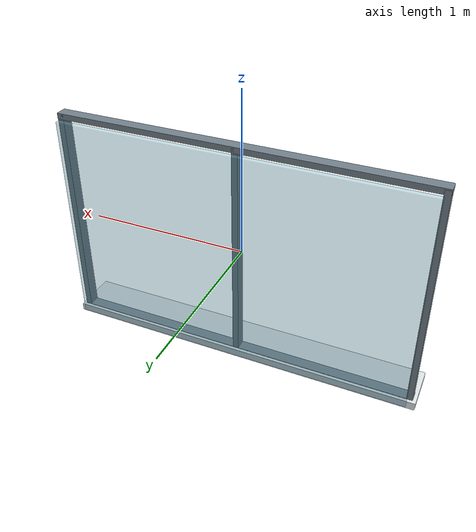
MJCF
<?xml version='1.0' encoding='utf-8'?>
<mujoco model="Observation window | static procedural reference">
  <visual>
    <global offwidth="1000" offheight="600" />
  </visual>
  <asset>
    <texture type="skybox" builtin="gradient" rgb1=".92 .95 .97" rgb2=".70 .78 .84" width="512" height="3072" />
  </asset>
  <worldbody>
    <geom type="box" size="1.09 0.015 0.68" pos="0 0.145 0.0085" quat="1 0 0 0" rgba="0.400000006 0.670000017 0.75999999 0.379999995" contype="0" conaffinity="0" />
    <geom type="box" size="0.018 0.035 0.7" pos="-1.1 0.065 0.0085" quat="1 0 0 0" rgba="0.449999988 0.50999999 0.550000012 1" contype="0" conaffinity="0" />
    <geom type="box" size="0.018 0.035 0.7" pos="0 0.065 0.0085" quat="1 0 0 0" rgba="0.449999988 0.50999999 0.550000012 1" contype="0" conaffinity="0" />
    <geom type="box" size="0.018 0.035 0.7" pos="1.1 0.065 0.0085" quat="1 0 0 0" rgba="0.449999988 0.50999999 0.550000012 1" contype="0" conaffinity="0" />
    <geom type="box" size="1.12 0.035 0.018" pos="0 0.065 -0.6815" quat="1 0 0 0" rgba="0.449999988 0.50999999 0.550000012 1" contype="0" conaffinity="0" />
    <geom type="box" size="1.12 0.035 0.018" pos="0 0.065 0.6985" quat="1 0 0 0" rgba="0.449999988 0.50999999 0.550000012 1" contype="0" conaffinity="0" />
    <geom type="box" size="1.14 0.14 0.025" pos="0 -0.02 -0.6915" quat="1 0 0 0" rgba="0.879999995 0.910000026 0.920000017 1" contype="0" conaffinity="0" />
  </worldbody>
</mujoco>
